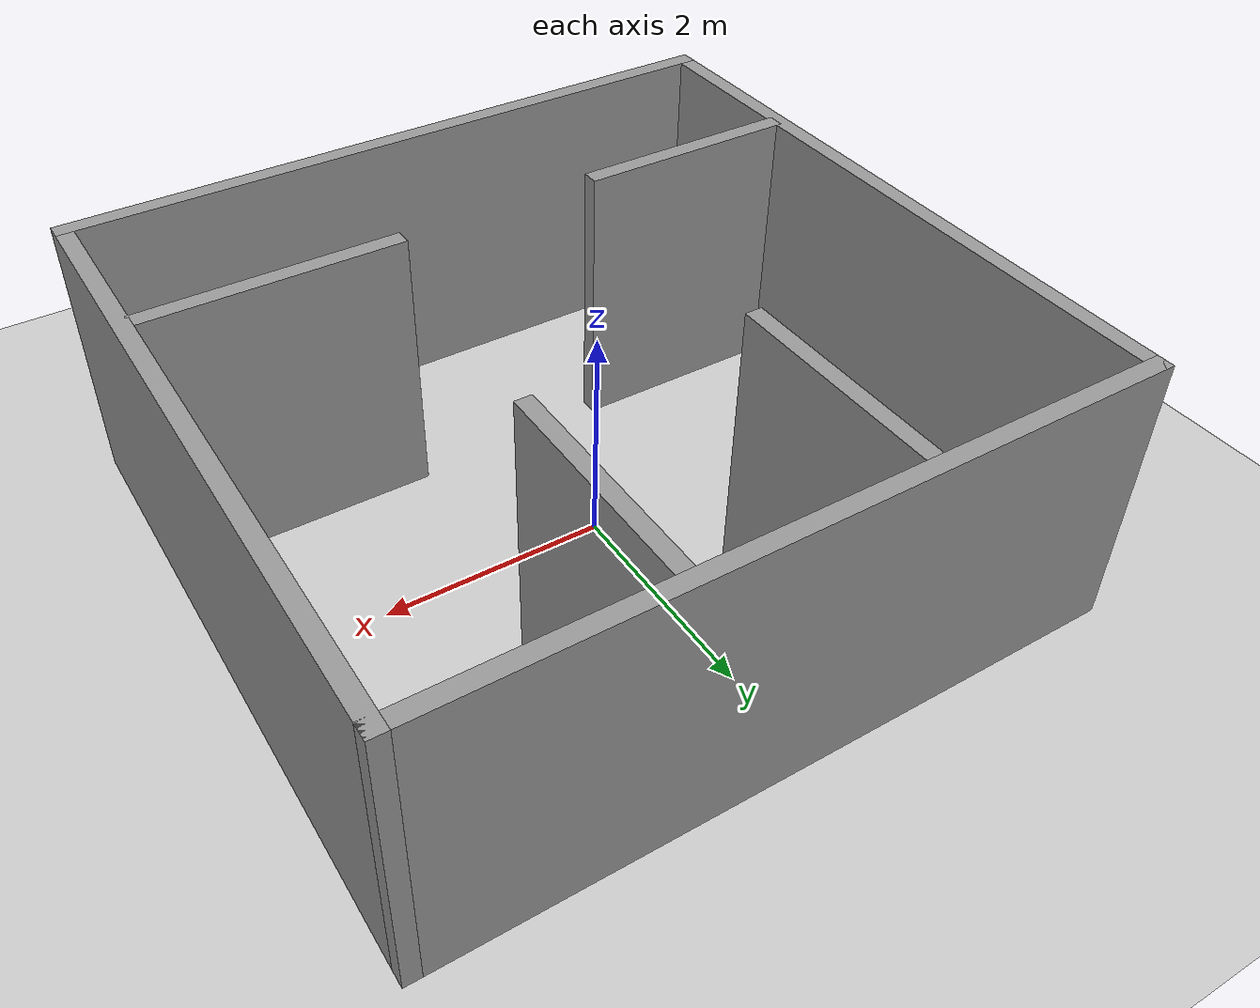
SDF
<sdf version="1.7">
 <world name="default">
  <light name="sun" type="directional">
   <pose>0 0 10 0 -0 0</pose>
   <diffuse>0.8 0.8 0.8 1</diffuse>
   <specular>0.2 0.2 0.2 1</specular>
   <attenuation>
    <range>1000</range>
    <constant>0.9</constant>
    <linear>0.01</linear>
    <quadratic>0.001</quadratic>
   </attenuation>
   <direction>-0.5 0.1 -0.9</direction>
   <spot><inner_angle>0</inner_angle><outer_angle>0</outer_angle><falloff>0</falloff></spot>
  </light>
  <model name="ground_plane">
   <static>1</static>
   <link name="link">
    <collision name="collision">
     <geometry><plane><normal>0 0 1</normal><size>100 100</size></plane></geometry>
     <surface>
      <contact><collide_bitmask>65535</collide_bitmask></contact>
      <friction><ode><mu>100</mu><mu2>50</mu2></ode></friction>
     </surface>
    </collision>
    <visual name="visual">
     <cast_shadows>0</cast_shadows>
     <geometry><plane><normal>0 0 1</normal><size>100 100</size></plane></geometry>
     <material>
      <script><uri>file://media/materials/scripts/gazebo.material</uri><name>Gazebo/Grey</name></script>
     </material>
    </visual>
   </link>
  </model>
  <gravity>0 0 -9.8</gravity>
  <magnetic_field>6e-06 2.3e-05 -4.2e-05</magnetic_field>
  <atmosphere type="adiabatic"/>
  <physics type="ode">
   <max_step_size>0.001</max_step_size>
   <real_time_factor>1</real_time_factor>
   <real_time_update_rate>1000</real_time_update_rate>
  </physics>
  <scene><ambient>0.4 0.4 0.4 1</ambient><background>0.7 0.7 0.7 1</background><shadows>1</shadows></scene>
  <spherical_coordinates>
   <surface_model>EARTH_WGS84</surface_model>
   <latitude_deg>0</latitude_deg>
   <longitude_deg>0</longitude_deg>
   <elevation>0</elevation>
   <heading_deg>0</heading_deg>
  </spherical_coordinates>
  <model name="maze6">
   <pose>0.186088 -0.042164 0 0 -0 0</pose>
   <link name="Wall_0">
    <collision name="Wall_0_Collision">
     <geometry><box><size>6.25 0.15 2.5</size></box></geometry>
     <pose>0 0 1.25 0 -0 0</pose>
    </collision>
    <visual name="Wall_0_Visual">
     <pose>0 0 1.25 0 -0 0</pose>
     <geometry><box><size>6.25 0.15 2.5</size></box></geometry>
     <material>
      <script><uri>file://media/materials/scripts/gazebo.material</uri><name>Gazebo/Grey</name></script>
      <ambient>1 1 1 1</ambient>
     </material>
     <meta><layer>0</layer></meta>
    </visual>
    <pose>0 -2.925 0 0 -0 0</pose>
   </link>
   <link name="Wall_1">
    <collision name="Wall_1_Collision">
     <geometry><box><size>6 0.15 2.5</size></box></geometry>
     <pose>0 0 1.25 0 -0 0</pose>
    </collision>
    <visual name="Wall_1_Visual">
     <pose>0 0 1.25 0 -0 0</pose>
     <geometry><box><size>6 0.15 2.5</size></box></geometry>
     <material>
      <script><uri>file://media/materials/scripts/gazebo.material</uri><name>Gazebo/Grey</name></script>
      <ambient>1 1 1 1</ambient>
     </material>
     <meta><layer>0</layer></meta>
    </visual>
    <pose>3.05 0 0 0 -0 1.5708</pose>
   </link>
   <link name="Wall_11">
    <collision name="Wall_11_Collision">
     <geometry><box><size>2.25 0.15 2.5</size></box></geometry>
     <pose>0 0 1.25 0 -0 0</pose>
    </collision>
    <visual name="Wall_11_Visual">
     <pose>0 0 1.25 0 -0 0</pose>
     <geometry><box><size>2.25 0.15 2.5</size></box></geometry>
     <material>
      <script><uri>file://media/materials/scripts/gazebo.material</uri><name>Gazebo/Grey</name></script>
      <ambient>1 1 1 1</ambient>
     </material>
     <meta><layer>0</layer></meta>
    </visual>
    <pose>1.87461 -1.39021 0 0 -0 0</pose>
   </link>
   <link name="Wall_13">
    <collision name="Wall_13_Collision">
     <geometry><box><size>2 0.15 2.5</size></box></geometry>
     <pose>0 0 1.25 0 -0 0</pose>
    </collision>
    <visual name="Wall_13_Visual">
     <pose>0 0 1.25 0 -0 0</pose>
     <geometry><box><size>2 0.15 2.5</size></box></geometry>
     <material>
      <script><uri>file://media/materials/scripts/gazebo.material</uri><name>Gazebo/Grey</name></script>
      <ambient>1 1 1 1</ambient>
     </material>
     <meta><layer>0</layer></meta>
    </visual>
    <pose>0.973616 1.91422 0 0 -0 -1.5708</pose>
   </link>
   <link name="Wall_2">
    <collision name="Wall_2_Collision">
     <geometry><box><size>6.25 0.15 2.5</size></box></geometry>
     <pose>0 0 1.25 0 -0 0</pose>
    </collision>
    <visual name="Wall_2_Visual">
     <pose>0 0 1.25 0 -0 0</pose>
     <geometry><box><size>6.25 0.15 2.5</size></box></geometry>
     <material>
      <script><uri>file://media/materials/scripts/gazebo.material</uri><name>Gazebo/Grey</name></script>
      <ambient>1 1 1 1</ambient>
     </material>
     <meta><layer>0</layer></meta>
    </visual>
    <pose>0 2.925 0 0 -0 3.14159</pose>
   </link>
   <link name="Wall_3">
    <collision name="Wall_3_Collision">
     <geometry><box><size>6 0.15 2.5</size></box></geometry>
     <pose>0 0 1.25 0 -0 0</pose>
    </collision>
    <visual name="Wall_3_Visual">
     <pose>0 0 1.25 0 -0 0</pose>
     <geometry><box><size>6 0.15 2.5</size></box></geometry>
     <material>
      <script><uri>file://media/materials/scripts/gazebo.material</uri><name>Gazebo/Grey</name></script>
      <ambient>1 1 1 1</ambient>
     </material>
     <meta><layer>0</layer></meta>
    </visual>
    <pose>-3.05 0 0 0 -0 -1.5708</pose>
   </link>
   <link name="Wall_6">
    <collision name="Wall_6_Collision">
     <geometry><box><size>2 0.15 2.5</size></box></geometry>
     <pose>0 0 1.25 0 -0 0</pose>
    </collision>
    <visual name="Wall_6_Visual">
     <pose>0 0 1.25 0 -0 0</pose>
     <geometry><box><size>2 0.15 2.5</size></box></geometry>
     <material>
      <script><uri>file://media/materials/scripts/gazebo.material</uri><name>Gazebo/Grey</name></script>
      <ambient>1 1 1 1</ambient>
     </material>
     <meta><layer>0</layer></meta>
    </visual>
    <pose>-1.0081 1.90092 0 0 -0 -1.5708</pose>
   </link>
   <link name="Wall_9">
    <collision name="Wall_9_Collision">
     <geometry><box><size>2 0.15 2.5</size></box></geometry>
     <pose>0 0 1.25 0 -0 0</pose>
    </collision>
    <visual name="Wall_9_Visual">
     <pose>0 0 1.25 0 -0 0</pose>
     <geometry><box><size>2 0.15 2.5</size></box></geometry>
     <material>
      <script><uri>file://media/materials/scripts/gazebo.material</uri><name>Gazebo/Grey</name></script>
      <ambient>1 1 1 1</ambient>
     </material>
     <meta><layer>0</layer></meta>
    </visual>
    <pose>-2.02491 -1.41681 0 0 -0 0</pose>
   </link>
   <static>1</static>
  </model>
 </world>
</sdf>
